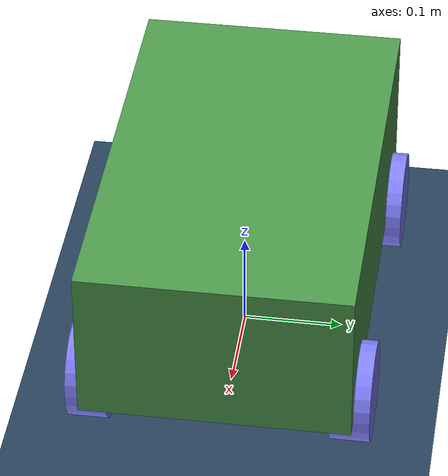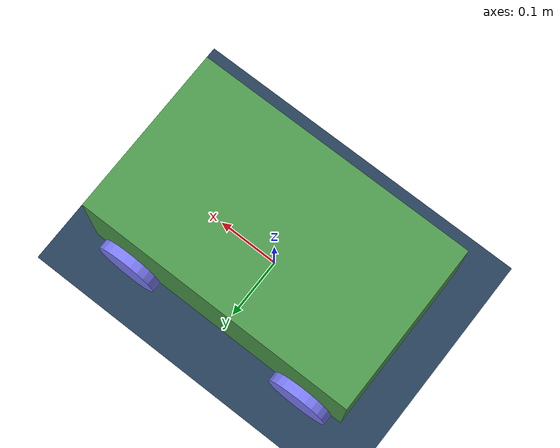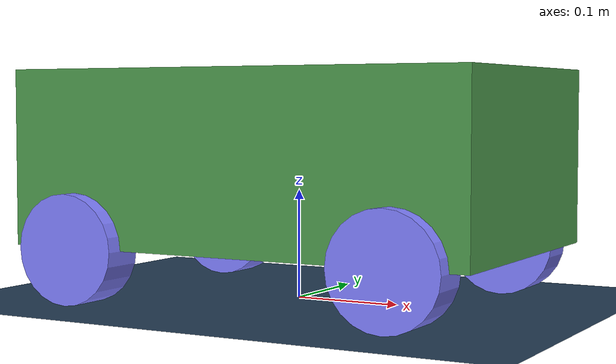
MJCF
<mujoco>
    <compiler angle="radian" autolimits="true"/>

    <asset>
        <texture name="grid" type="2d" builtin="checker" width="512" height="512" rgb1=".1 .2 .3" rgb2=".2 .3 .4"/>
        <material name="grid" texture="grid" texrepeat="1 1" texuniform="true" reflectance=".2"/>
    </asset>

    <default>
        <joint damping=".03" actuatorfrcrange="-3 3"/>

        <default class="wheel">
            <!-- letting the steer (z) and drive (y) joints share the same body -->
            <joint type="hinge" axis="0 1 0"/>
            <geom type="cylinder" size=".05 .02" rgba=".5 .5 1 1" zaxis="0 1 0"/>
        </default>

        <default class="steer">
            <!-- vertical steering axis. armature/frictionloss condition the otherwise near-zero
                 inertia about z so the ackermann equality constraint transmits cleanly. -->
            <joint type="hinge" axis="0 0 1" limited="true" range="-.4 .4"
                   damping=".001" armature=".0002" frictionloss=".01" actuatorfrcrange="-100 100"/>
        </default>
    </default>

    <worldbody>
        <geom type="plane" size="3 3 .01" material="grid"/>
        <body name="car" pos="0 0 .1306">
            <freejoint/>
            <light name="top light" pos="0 0 2" mode="trackcom" diffuse=".4 .4 .4"/>
            <geom name="chasis" type="box" size=".223 .134 .0806" rgba=".3 .6 .3 1"/>

            <!-- virtual "steering wheel": not a real part of the car, it just provides a single
                 steering input that the two front wheels track via the ackermann constraints below -->
            <body name="steering wheel" pos=".156 0 .05">
                <joint name="steering wheel" class="steer"/>
                <geom type="cylinder" size=".02 .005" contype="0" conaffinity="0" mass=".01" rgba="1 0 0 .3"/>
            </body>

            <body name="front left wheel" pos=".156 .13 -.0806">
                <joint name="front left steer" class="steer"/>
                <joint name="front left" class="wheel"/>
                <geom class="wheel"/>
            </body>
            <body name="front right wheel" pos=".156 -.13 -.0806">
                <joint name="front right steer" class="steer"/>
                <joint name="front right" class="wheel"/>
                <geom class="wheel"/>
            </body>
            <body name="back left wheel" pos="-.156 .13 -.0806">
                <joint name="back left" class="wheel"/>
                <geom class="wheel"/>
            </body>
            <body name="back right wheel" pos="-.156 -.13 -.0806">
                <joint name="back right" class="wheel"/>
                <geom class="wheel"/>
            </body>
        </body>
    </worldbody>

    <actuator>
        <motor name="front left" joint="front left" ctrlrange="-1 1"/>
        <motor name="front right" joint="front right" ctrlrange="-1 1"/>
        <motor name="back left" joint="back left" ctrlrange="-1 1"/>
        <motor name="back right" joint="back right" ctrlrange="-1 1"/>
        <position name="steering" joint="steering wheel" kp="25" ctrlrange="-.4 .4"/>
    </actuator>

    <equality>
        <joint name="ackermann left"  joint1="front left steer"  joint2="steering wheel"
               polycoef="0 1 0.41666667 0.17361111 -0.06655093"/>
        <joint name="ackermann right" joint1="front right steer" joint2="steering wheel"
               polycoef="0 1 -0.41666667 0.17361111 0.06655093"/>
    </equality>

</mujoco>
